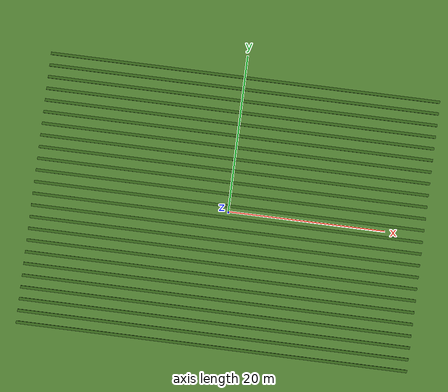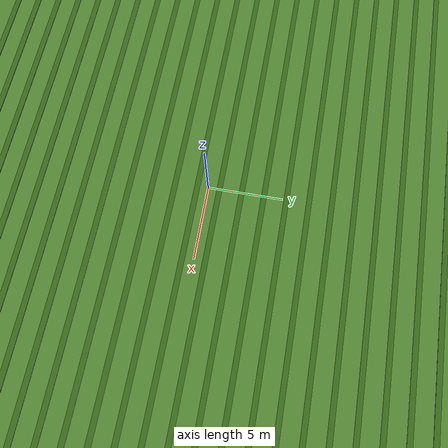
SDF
<sdf version="1.9">
 <world name="iris_sprayer_field">
  <physics name="1ms" type="ignore">
   <max_step_size>0.001</max_step_size>
   <real_time_factor>1.0</real_time_factor>
  </physics>
  <plugin filename="gz-sim-physics-system" name="gz::sim::systems::Physics"/>
  <plugin filename="gz-sim-sensors-system" name="gz::sim::systems::Sensors">
   <render_engine>ogre2</render_engine>
  </plugin>
  <plugin filename="gz-sim-user-commands-system" name="gz::sim::systems::UserCommands"/>
  <plugin filename="gz-sim-scene-broadcaster-system" name="gz::sim::systems::SceneBroadcaster"/>
  <plugin filename="gz-sim-imu-system" name="gz::sim::systems::Imu"/>
  <plugin filename="gz-sim-navsat-system" name="gz::sim::systems::NavSat"/>
  <plugin filename="gz-sim-particle-emitter-system" name="gz::sim::systems::ParticleEmitter"/>
  <scene>
   <ambient>0.75 0.80 0.70 1</ambient>
   <background>0.45 0.70 0.90 1</background>
   <sky><clouds>true</clouds></sky>
   <shadows>true</shadows>
  </scene>
  <light type="directional" name="sun">
   <pose>0 0 200 0 0 0</pose>
   <direction>-0.45 0.20 -0.87</direction>
   <diffuse>1.0 0.92 0.78 1</diffuse>
   <specular>0.35 0.30 0.25 1</specular>
   <attenuation>
    <range>2000</range>
    <constant>1.0</constant>
    <linear>0.0</linear>
    <quadratic>0.0</quadratic>
   </attenuation>
  </light>
  <light type="directional" name="sky_fill">
   <cast_shadows>false</cast_shadows>
   <pose>0 0 50 0 0 0</pose>
   <direction>0 0 -1</direction>
   <diffuse>0.35 0.45 0.60 1</diffuse>
   <specular>0.0 0.0 0.0 1</specular>
   <attenuation>
    <range>2000</range>
    <constant>1.0</constant>
    <linear>0.0</linear>
    <quadratic>0.0</quadratic>
   </attenuation>
  </light>
  <spherical_coordinates>
   <latitude_deg>-35.363333333</latitude_deg>
   <longitude_deg>149.165222222</longitude_deg>
   <elevation>584</elevation>
   <heading_deg>0</heading_deg>
   <surface_model>EARTH_WGS84</surface_model>
  </spherical_coordinates>
  <model name="ground_plane">
   <static>true</static>
   <link name="link">
    <collision name="collision">
     <geometry><plane><normal>0 0 1</normal><size>1000 1000</size></plane></geometry>
     <surface><friction><ode><mu>0.8</mu><mu2>0.8</mu2></ode></friction></surface>
    </collision>
    <visual name="grass">
     <geometry><plane><normal>0 0 1</normal><size>1000 1000</size></plane></geometry>
     <material>
      <ambient>0.25 0.40 0.15 1</ambient>
      <diffuse>0.30 0.48 0.18 1</diffuse>
      <specular>0.04 0.06 0.02 1</specular>
     </material>
    </visual>
   </link>
  </model>
  <model name="crop_field">
   <static>true</static>
   <link name="link">
    <visual name="row_00">
     <pose>0 -17.25 0.06 0 0 0</pose>
     <geometry><box><size>50 0.35 0.12</size></box></geometry>
     <material><ambient>0.18 0.34 0.08 1</ambient><diffuse>0.20 0.38 0.09 1</diffuse></material>
    </visual>
    <visual name="row_01">
     <pose>0 -15.75 0.06 0 0 0</pose>
     <geometry><box><size>50 0.35 0.12</size></box></geometry>
     <material><ambient>0.18 0.34 0.08 1</ambient><diffuse>0.20 0.38 0.09 1</diffuse></material>
    </visual>
    <visual name="row_02">
     <pose>0 -14.25 0.06 0 0 0</pose>
     <geometry><box><size>50 0.35 0.12</size></box></geometry>
     <material><ambient>0.18 0.34 0.08 1</ambient><diffuse>0.20 0.38 0.09 1</diffuse></material>
    </visual>
    <visual name="row_03">
     <pose>0 -12.75 0.06 0 0 0</pose>
     <geometry><box><size>50 0.35 0.12</size></box></geometry>
     <material><ambient>0.18 0.34 0.08 1</ambient><diffuse>0.20 0.38 0.09 1</diffuse></material>
    </visual>
    <visual name="row_04">
     <pose>0 -11.25 0.06 0 0 0</pose>
     <geometry><box><size>50 0.35 0.12</size></box></geometry>
     <material><ambient>0.18 0.34 0.08 1</ambient><diffuse>0.20 0.38 0.09 1</diffuse></material>
    </visual>
    <visual name="row_05">
     <pose>0 -9.75 0.06 0 0 0</pose>
     <geometry><box><size>50 0.35 0.12</size></box></geometry>
     <material><ambient>0.18 0.34 0.08 1</ambient><diffuse>0.20 0.38 0.09 1</diffuse></material>
    </visual>
    <visual name="row_06">
     <pose>0 -8.25 0.06 0 0 0</pose>
     <geometry><box><size>50 0.35 0.12</size></box></geometry>
     <material><ambient>0.18 0.34 0.08 1</ambient><diffuse>0.20 0.38 0.09 1</diffuse></material>
    </visual>
    <visual name="row_07">
     <pose>0 -6.75 0.06 0 0 0</pose>
     <geometry><box><size>50 0.35 0.12</size></box></geometry>
     <material><ambient>0.18 0.34 0.08 1</ambient><diffuse>0.20 0.38 0.09 1</diffuse></material>
    </visual>
    <visual name="row_08">
     <pose>0 -5.25 0.06 0 0 0</pose>
     <geometry><box><size>50 0.35 0.12</size></box></geometry>
     <material><ambient>0.18 0.34 0.08 1</ambient><diffuse>0.20 0.38 0.09 1</diffuse></material>
    </visual>
    <visual name="row_09">
     <pose>0 -3.75 0.06 0 0 0</pose>
     <geometry><box><size>50 0.35 0.12</size></box></geometry>
     <material><ambient>0.18 0.34 0.08 1</ambient><diffuse>0.20 0.38 0.09 1</diffuse></material>
    </visual>
    <visual name="row_10">
     <pose>0 -2.25 0.06 0 0 0</pose>
     <geometry><box><size>50 0.35 0.12</size></box></geometry>
     <material><ambient>0.18 0.34 0.08 1</ambient><diffuse>0.20 0.38 0.09 1</diffuse></material>
    </visual>
    <visual name="row_11">
     <pose>0 -0.75 0.06 0 0 0</pose>
     <geometry><box><size>50 0.35 0.12</size></box></geometry>
     <material><ambient>0.18 0.34 0.08 1</ambient><diffuse>0.20 0.38 0.09 1</diffuse></material>
    </visual>
    <visual name="row_12">
     <pose>0 0.75 0.06 0 0 0</pose>
     <geometry><box><size>50 0.35 0.12</size></box></geometry>
     <material><ambient>0.18 0.34 0.08 1</ambient><diffuse>0.20 0.38 0.09 1</diffuse></material>
    </visual>
    <visual name="row_13">
     <pose>0 2.25 0.06 0 0 0</pose>
     <geometry><box><size>50 0.35 0.12</size></box></geometry>
     <material><ambient>0.18 0.34 0.08 1</ambient><diffuse>0.20 0.38 0.09 1</diffuse></material>
    </visual>
    <visual name="row_14">
     <pose>0 3.75 0.06 0 0 0</pose>
     <geometry><box><size>50 0.35 0.12</size></box></geometry>
     <material><ambient>0.18 0.34 0.08 1</ambient><diffuse>0.20 0.38 0.09 1</diffuse></material>
    </visual>
    <visual name="row_15">
     <pose>0 5.25 0.06 0 0 0</pose>
     <geometry><box><size>50 0.35 0.12</size></box></geometry>
     <material><ambient>0.18 0.34 0.08 1</ambient><diffuse>0.20 0.38 0.09 1</diffuse></material>
    </visual>
    <visual name="row_16">
     <pose>0 6.75 0.06 0 0 0</pose>
     <geometry><box><size>50 0.35 0.12</size></box></geometry>
     <material><ambient>0.18 0.34 0.08 1</ambient><diffuse>0.20 0.38 0.09 1</diffuse></material>
    </visual>
    <visual name="row_17">
     <pose>0 8.25 0.06 0 0 0</pose>
     <geometry><box><size>50 0.35 0.12</size></box></geometry>
     <material><ambient>0.18 0.34 0.08 1</ambient><diffuse>0.20 0.38 0.09 1</diffuse></material>
    </visual>
    <visual name="row_18">
     <pose>0 9.75 0.06 0 0 0</pose>
     <geometry><box><size>50 0.35 0.12</size></box></geometry>
     <material><ambient>0.18 0.34 0.08 1</ambient><diffuse>0.20 0.38 0.09 1</diffuse></material>
    </visual>
    <visual name="row_19">
     <pose>0 11.25 0.06 0 0 0</pose>
     <geometry><box><size>50 0.35 0.12</size></box></geometry>
     <material><ambient>0.18 0.34 0.08 1</ambient><diffuse>0.20 0.38 0.09 1</diffuse></material>
    </visual>
    <visual name="row_20">
     <pose>0 12.75 0.06 0 0 0</pose>
     <geometry><box><size>50 0.35 0.12</size></box></geometry>
     <material><ambient>0.18 0.34 0.08 1</ambient><diffuse>0.20 0.38 0.09 1</diffuse></material>
    </visual>
    <visual name="row_21">
     <pose>0 14.25 0.06 0 0 0</pose>
     <geometry><box><size>50 0.35 0.12</size></box></geometry>
     <material><ambient>0.18 0.34 0.08 1</ambient><diffuse>0.20 0.38 0.09 1</diffuse></material>
    </visual>
    <visual name="row_22">
     <pose>0 15.75 0.06 0 0 0</pose>
     <geometry><box><size>50 0.35 0.12</size></box></geometry>
     <material><ambient>0.18 0.34 0.08 1</ambient><diffuse>0.20 0.38 0.09 1</diffuse></material>
    </visual>
    <visual name="row_23">
     <pose>0 17.25 0.06 0 0 0</pose>
     <geometry><box><size>50 0.35 0.12</size></box></geometry>
     <material><ambient>0.18 0.34 0.08 1</ambient><diffuse>0.20 0.38 0.09 1</diffuse></material>
    </visual>
   </link>
  </model>
  <model name="axes">
   <static>true</static>
   <link name="link">
    <visual name="x_axis">
     <cast_shadows>false</cast_shadows>
     <pose>2.5 0 0.05 0 0 0</pose>
     <geometry><box><size>5 0.04 0.04</size></box></geometry>
     <material><ambient>1 0 0 1</ambient><diffuse>1 0 0 1</diffuse></material>
    </visual>
    <visual name="y_axis">
     <cast_shadows>false</cast_shadows>
     <pose>0 2.5 0.05 0 0 0</pose>
     <geometry><box><size>0.04 5 0.04</size></box></geometry>
     <material><ambient>0 0.8 0 1</ambient><diffuse>0 0.8 0 1</diffuse></material>
    </visual>
    <visual name="z_axis">
     <cast_shadows>false</cast_shadows>
     <pose>0 0 2.5 0 0 0</pose>
     <geometry><box><size>0.04 0.04 5</size></box></geometry>
     <material><ambient>0 0 1 1</ambient><diffuse>0 0 1 1</diffuse></material>
    </visual>
   </link>
  </model>
 </world>
</sdf>
